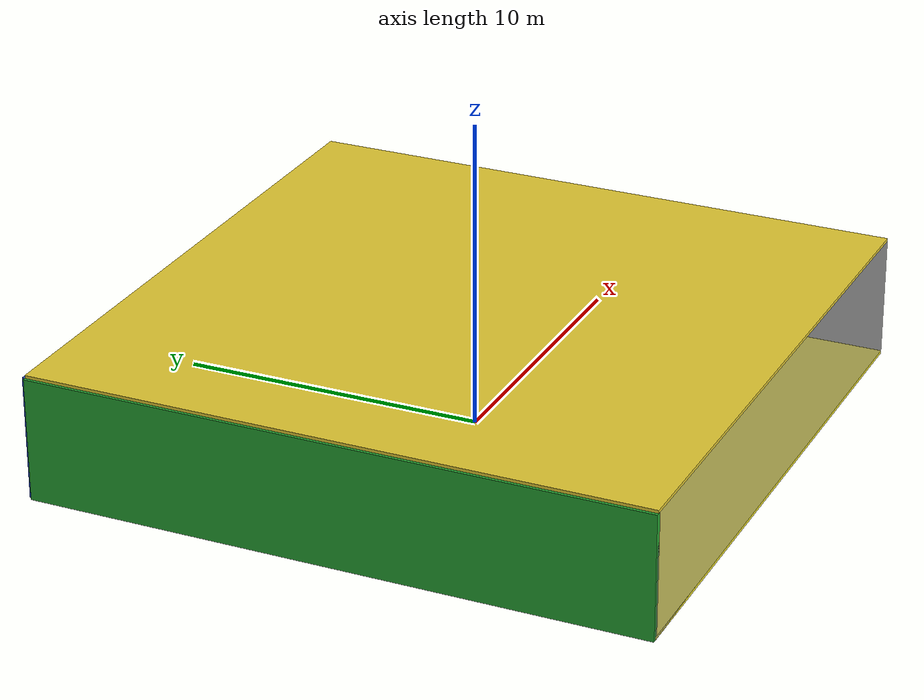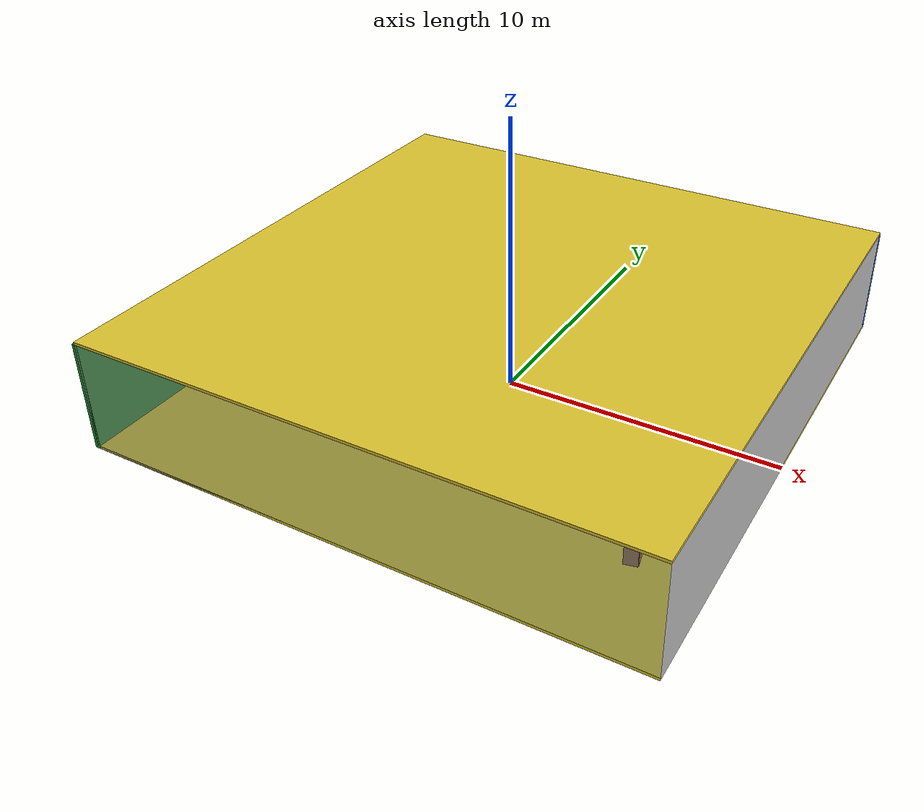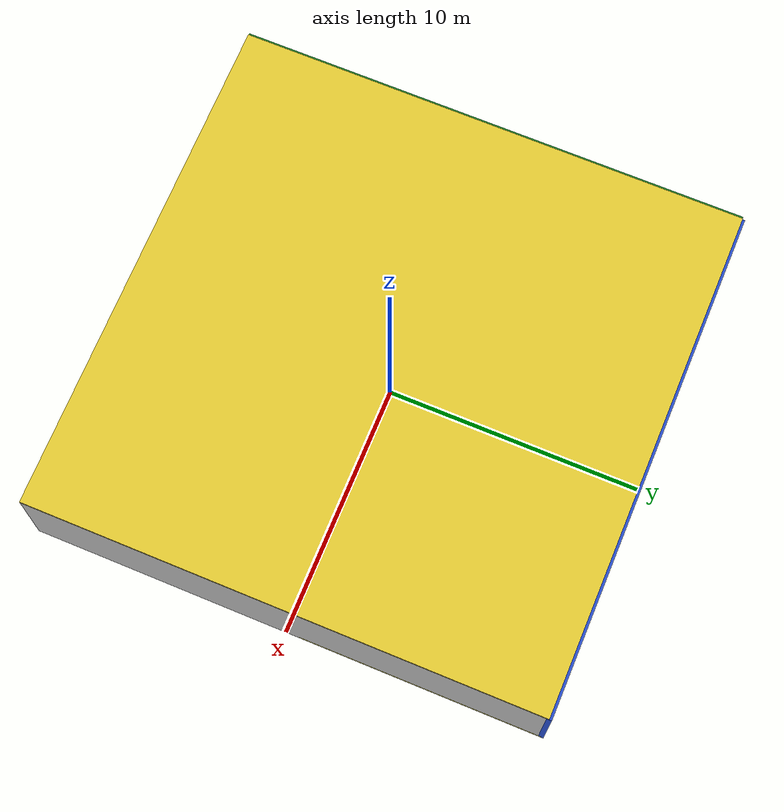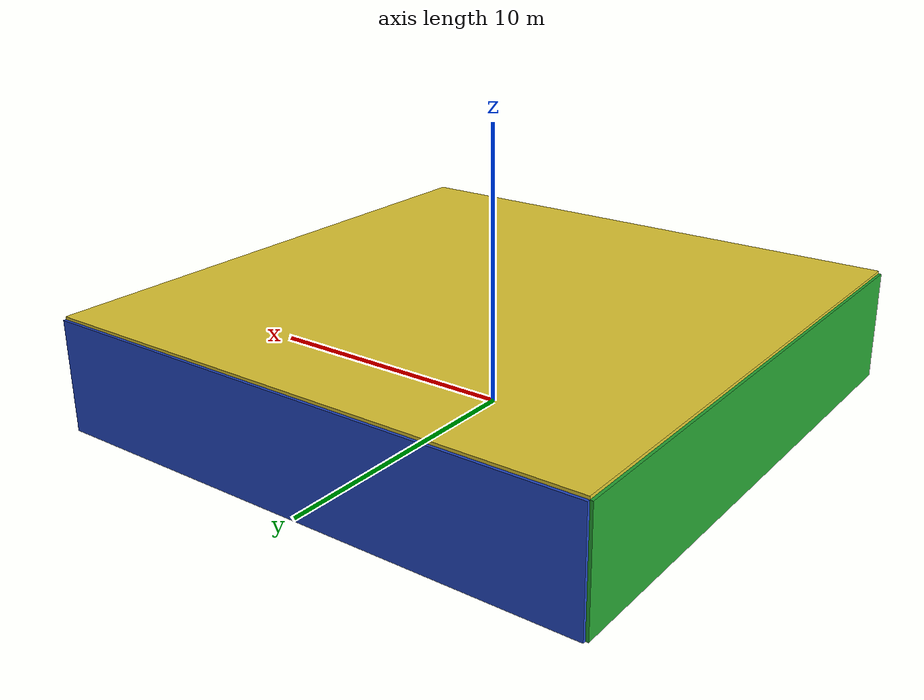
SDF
<sdf version="1.4">
 <world name="default">
  <physics type="ode">
   <max_step_size>0.001</max_step_size>
   <real_time_factor>1</real_time_factor>
   <real_time_update_rate>1000</real_time_update_rate>
   <gravity>0 0 -9.8</gravity>
  </physics>
  <scene><ambient>0.4 0.4 0.4 1</ambient><background>0.7 0.7 0.7 1</background><shadows>1</shadows></scene>
  <model name="Surrounding">
   <static>1</static>
   <link name="Ceiling">
    <collision name="Ceiling_Collision"><geometry><box><size>20 20 0.1</size></box></geometry></collision>
    <visual name="Ceiling_Visual">
     <geometry><box><size>20 20 0.1</size></box></geometry>
     <material>
      <script><uri>file://media/materials/scripts/gazebo.material</uri><name>Gazebo/ZincYellow</name></script>
     </material>
    </visual>
    <pose>0 0 4.05 0 0 0</pose>
   </link>
   <link name="Wall_South">
    <collision name="Wall_South_Collision">
     <geometry><box><size>20 0 4</size></box></geometry>
     <pose>0 0 2 0 -0 0</pose>
    </collision>
    <visual name="Wall_South_Visual">
     <pose>0 0 2 0 -0 0</pose>
     <geometry><box><size>20 0 4</size></box></geometry>
     <material>
      <script><uri>file://media/materials/scripts/gazebo.material</uri><name>Gazebo/GreyTransparent</name></script>
     </material>
    </visual>
    <velocity_decay><linear>0</linear><angular>0</angular></velocity_decay>
    <pose>0 -10 0 0 -0 0</pose>
   </link>
   <link name="Wall_East">
    <collision name="Wall_21_Collision">
     <geometry><box><size>20 0 4</size></box></geometry>
     <pose>0 0 2 0 -0 0</pose>
    </collision>
    <visual name="Wall_21_Visual">
     <pose>0 0 2 0 -0 0</pose>
     <geometry><box><size>20 0 4</size></box></geometry>
     <material>
      <script><uri>file://media/materials/scripts/gazebo.material</uri><name>Gazebo/Pioneer2Body</name></script>
     </material>
    </visual>
    <velocity_decay><linear>0</linear><angular>0</angular></velocity_decay>
    <pose>10 0 0 0 -0 1.5708</pose>
   </link>
   <link name="Wall_North">
    <collision name="Wall_22_Collision">
     <geometry><box><size>20 0.2 4</size></box></geometry>
     <pose>0 0 2 0 -0 0</pose>
    </collision>
    <visual name="Wall_22_Visual">
     <pose>0 0 2 0 -0 0</pose>
     <geometry><box><size>20 0.2 4</size></box></geometry>
     <material>
      <script><uri>file://media/materials/scripts/gazebo.material</uri><name>Gazebo/Blue</name></script>
     </material>
    </visual>
    <velocity_decay><linear>0</linear><angular>0</angular></velocity_decay>
    <pose>0 10 0 0 -0 0</pose>
   </link>
   <link name="Wall_West">
    <collision name="Wall_23_Collision">
     <geometry><box><size>20 0.2 4</size></box></geometry>
     <pose>0 0 2 0 -0 0</pose>
    </collision>
    <visual name="Wall_23_Visual">
     <pose>0 0 2 0 -0 0</pose>
     <geometry><box><size>20 0.2 4</size></box></geometry>
     <material>
      <script><uri>file://media/materials/scripts/gazebo.material</uri><name>Gazebo/GreenGlow</name></script>
     </material>
    </visual>
    <velocity_decay><linear>0</linear><angular>0</angular></velocity_decay>
    <pose>-10 0 0 0 0 -1.5708</pose>
   </link>
   <link name="Ground_link">
    <collision name="collision">
     <pose>0 0 .05 0 -0 0</pose>
     <geometry><box><size>20 20 0.1</size></box></geometry>
    </collision>
    <visual name="visual">
     <pose>0 0 .05 0 -0 0</pose>
     <geometry><box><size>20 20 0.1</size></box></geometry>
     <material>
      <script><uri>file://media/materials/scripts/gazebo.material</uri><name>Gazebo/YellowGlow</name></script>
     </material>
    </visual>
   </link>
   <static>1</static>
  </model>
  <spherical_coordinates>
   <surface_model>EARTH_WGS84</surface_model>
   <latitude_deg>0</latitude_deg>
   <longitude_deg>0</longitude_deg>
   <elevation>0</elevation>
   <heading_deg>0</heading_deg>
  </spherical_coordinates>
  <light name="lightball_0" type="diffuse">
   <diffuse>0.8 0.8 0.8 1</diffuse>
   <specular>0.2 0.2 0.2 1</specular>
   <attenuation>
    <range>100</range>
    <constant>0.7</constant>
    <linear>0.01</linear>
    <quadratic>0.001</quadratic>
   </attenuation>
   <direction>-0.5 0.1 -0.9</direction>
   <pose>3.4649852737 -5.04579304941 3.56345003713 0 0 0</pose>
  </light>
  <include>
   <uri>model://construction_cone</uri>
   <pose>-0.416500478997 -2.61927967219 0 0 0 1.04134194096</pose>
  </include>
  <include><uri>model://table</uri><pose>4.62471490848 -2.13931769695 0 0 0 0.068975329312</pose></include>
  <include><uri>model://cabinet</uri><pose>7.57538797687 -6.36451578867 0 0 0 0.220855872632</pose></include>
  <include>
   <uri>model://construction_cone</uri>
   <pose>8.11655531613 -3.79642468159 0 0 0 0.538415065238</pose>
  </include>
  <include><uri>model://cabinet</uri><pose>7.89795743661 -0.321710710621 0 0 0 1.02868119582</pose></include>
  <include><uri>model://table</uri><pose>6.67986262816 5.39890832127 0 0 0 1.62588722478</pose></include>
 </world>
</sdf>

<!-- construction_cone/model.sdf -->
<sdf version="1.5">
  <model name="Construction Cone">
    <link name="link">
      <collision name="collision">
        <geometry>
          <mesh>
            <scale>10 10 10</scale>
            <uri>file://isr-testbed/construction_cone/meshes/construction_cone.dae</uri>
          </mesh>
        </geometry>
      </collision>
      <visual name="visual">
        <geometry>
          <mesh>
            <scale>10 10 10</scale>
            <uri>file://isr-testbed/construction_cone/meshes/construction_cone.dae</uri>
          </mesh>
        </geometry>
      </visual>
    </link>
  </model>
</sdf>

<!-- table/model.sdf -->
<sdf version="1.5">
  <model name="table">
    <static>true</static>
    <link name="link">
      <collision name="surface">
        <pose>0 0 1.0 0 0 0</pose>
        <geometry>
          <box>
            <size>1.5 0.8 0.03</size>
          </box>
        </geometry>
        <surface>
          <friction>
            <ode>
              <mu>0.6</mu>
              <mu2>0.6</mu2>
            </ode>
          </friction>
        </surface>
      </collision>
      <visual name="visual1">
        <pose>0 0 1.0 0 0 0</pose>
        <geometry>
          <box>
            <size>1.5 0.8 0.03</size>
          </box>
        </geometry>
        <material>
          <script>
            <uri>model://media/materials/scripts/gazebo.material</uri>
            <name>Gazebo/Wood</name>
          </script>
        </material>
      </visual>
      <collision name="front_left_leg">
        <pose>0.68 0.38 0.5 0 0 0</pose>
        <geometry>
          <cylinder>
            <radius>0.02</radius>
            <length>1.0</length>
          </cylinder>
        </geometry>
      </collision>
      <visual name="front_left_leg">
        <pose>0.68 0.38 0.5 0 0 0</pose>
        <geometry>
          <cylinder>
            <radius>0.02</radius>
            <length>1.0</length>
          </cylinder>
        </geometry>
        <material>
          <script>
            <uri>model://media/materials/scripts/gazebo.material</uri>
            <name>Gazebo/Grey</name>
          </script>
        </material>
      </visual>
      <collision name="front_right_leg">
        <pose>0.68 -0.38 0.5 0 0 0</pose>
        <geometry>
          <cylinder>
            <radius>0.02</radius>
            <length>1.0</length>
          </cylinder>
        </geometry>
      </collision>
      <visual name="front_right_leg">
        <pose>0.68 -0.38 0.5 0 0 0</pose>
        <geometry>
          <cylinder>
            <radius>0.02</radius>
            <length>1.0</length>
          </cylinder>
        </geometry>
        <material>
          <script>
            <uri>model://media/materials/scripts/gazebo.material</uri>
            <name>Gazebo/Grey</name>
          </script>
        </material>
      </visual>
      <collision name="back_right_leg">
        <pose>-0.68 -0.38 0.5 0 0 0</pose>
        <geometry>
          <cylinder>
            <radius>0.02</radius>
            <length>1.0</length>
          </cylinder>
        </geometry>
      </collision>
      <visual name="back_right_leg">
        <pose>-0.68 -0.38 0.5 0 0 0</pose>
        <geometry>
          <cylinder>
            <radius>0.02</radius>
            <length>1.0</length>
          </cylinder>
        </geometry>
        <material>
          <script>
            <uri>model://media/materials/scripts/gazebo.material</uri>
            <name>Gazebo/Grey</name>
          </script>
        </material>
      </visual>
      <collision name="back_left_leg">
        <pose>-0.68 0.38 0.5 0 0 0</pose>
        <geometry>
          <cylinder>
            <radius>0.02</radius>
            <length>1.0</length>
          </cylinder>
        </geometry>
      </collision>
      <visual name="back_left_leg">
        <pose>-0.68 0.38 0.5 0 0 0</pose>
        <geometry>
          <cylinder>
            <radius>0.02</radius>
            <length>1.0</length>
          </cylinder>
        </geometry>
        <material>
          <script>
            <uri>model://media/materials/scripts/gazebo.material</uri>
            <name>Gazebo/Grey</name>
          </script>
        </material>
      </visual>
    </link>
  </model>
</sdf>

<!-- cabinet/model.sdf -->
<sdf version="1.5">
  <model name="cabinet">
    <static>true</static>
    <link name="cabinet_bottom_plate">
      <inertial>
        <pose>0 0 -1 0 0 0</pose>
        <inertia>
          <ixx>2.050000</ixx>
          <ixy>0</ixy>
          <ixz>0</ixz>
          <iyy>2.050000</iyy>
          <iyz>0</iyz>
          <izz>2.050000</izz>
        </inertia>
        <mass>25.000000</mass>
      </inertial>
      <collision name="cabinet_bottom_plate_geom">
        <pose>0 0 0.010000 0 0 0</pose>
        <geometry>
          <box>
            <size>0.450000 0.450000 0.020000</size>
          </box>
        </geometry>
      </collision>
      <visual name="cabinet_bottom_plate_geom_visual">
        <pose>0 0 0.010000 0 0 0</pose>
        <geometry>
          <box>
            <size>0.450000 0.450000 0.020000</size>
          </box>
        </geometry>
        <material>
          <script>
            <uri>model://media/materials/scripts/gazebo.material</uri>
            <name>Gazebo/Wood</name>
          </script>
        </material>
      </visual>
      <collision name="cabinet_bottom_plate_geom_cabinet_back_plate">
        <pose>0.235000 0 0.510000 0 0 0</pose>
        <geometry>
          <box>
            <size>0.020000 0.450000 1.020000</size>
          </box>
        </geometry>
      </collision>
      <visual name="cabinet_bottom_plate_geom_cabinet_back_plate_visual">
        <pose>0.235000 0 0.510000 0 0 0</pose>
        <geometry>
          <box>
            <size>0.020000 0.450000 1.020000</size>
          </box>
        </geometry>
        <material>
          <script>
            <uri>model://media/materials/scripts/gazebo.material</uri>
            <name>Gazebo/Wood</name>
          </script>
        </material>
      </visual>
      <collision name="cabinet_bottom_plate_geom_cabinet_left_plate">
        <pose>0 0.235000 0.510000 0 0 0</pose>
        <geometry>
          <box>
            <size>0.450000 0.020000 1.020000</size>
          </box>
        </geometry>
      </collision>
      <visual name="cabinet_bottom_plate_geom_cabinet_left_plate_visual">
        <pose>0 0.235000 0.510000 0 0 0</pose>
        <geometry>
          <box>
            <size>0.450000 0.020000 1.020000</size>
          </box>
        </geometry>
        <material>
          <script>
            <uri>model://media/materials/scripts/gazebo.material</uri>
            <name>Gazebo/Wood</name>
          </script>
        </material>
      </visual>
      <collision name="cabinet_bottom_plate_geom_cabinet_middle_plate">
        <pose>0 0 0.510000 0 0 0</pose>
        <geometry>
          <box>
            <size>0.450000 0.450000 0.020000</size>
          </box>
        </geometry>
      </collision>
      <visual name="cabinet_bottom_plate_geom_cabinet_middle_plate_visual">
        <pose>0 0 0.510000 0 0 0</pose>
        <geometry>
          <box>
            <size>0.450000 0.450000 0.020000</size>
          </box>
        </geometry>
        <material>
          <script>
            <uri>model://media/materials/scripts/gazebo.material</uri>
            <name>Gazebo/Wood</name>
          </script>
        </material>
      </visual>
      <collision name="cabinet_bottom_plate_geom_cabinet_right_plate">
        <pose>0 -0.235000 0.510000 0 0 0</pose>
        <geometry>
          <box>
            <size>0.450000 0.020000 1.020000</size>
          </box>
        </geometry>
      </collision>
      <visual name="cabinet_bottom_plate_geom_cabinet_right_plate_visual">
        <pose>0 -0.235000 0.510000 0 0 0</pose>
        <geometry>
          <box>
            <size>0.450000 0.020000 1.020000</size>
          </box>
        </geometry>
        <material>
          <script>
            <uri>model://media/materials/scripts/gazebo.material</uri>
            <name>Gazebo/Wood</name>
          </script>
        </material>
      </visual>
      <collision name="cabinet_bottom_plate_geom_cabinet_top_plate">
        <pose>0 0 1.010000 0 0 0</pose>
        <geometry>
          <box>
            <size>0.450000 0.450000 0.020000</size>
          </box>
        </geometry>
      </collision>
      <visual name="cabinet_bottom_plate_geom_cabinet_top_plate_visual">
        <pose>0 0 1.010000 0 0 0</pose>
        <geometry>
          <box>
            <size>0.450000 0.450000 0.020000</size>
          </box>
        </geometry>
        <material>
          <script>
            <uri>model://media/materials/scripts/gazebo.material</uri>
            <name>Gazebo/Wood</name>
          </script>
        </material>
      </visual>
    </link>
  </model>
</sdf>
